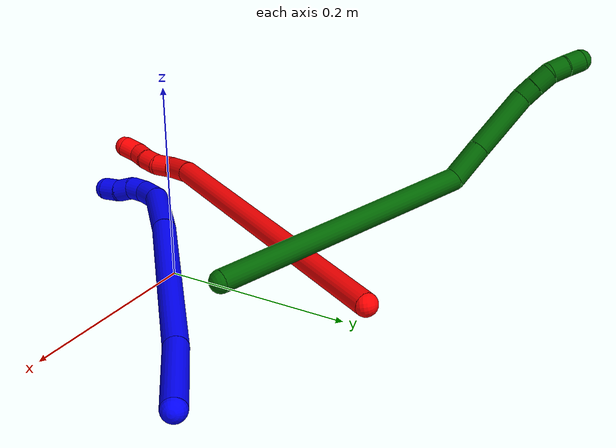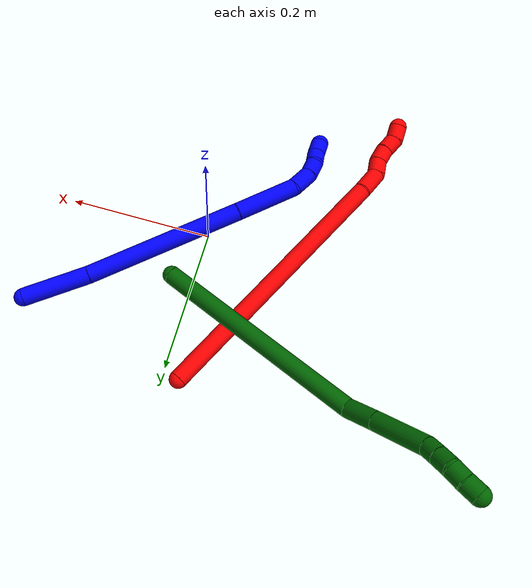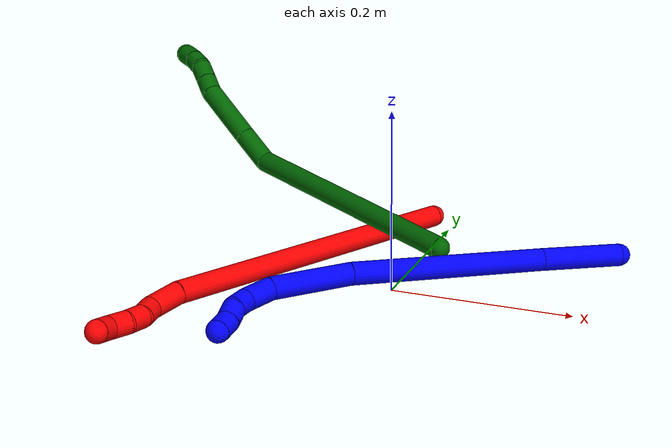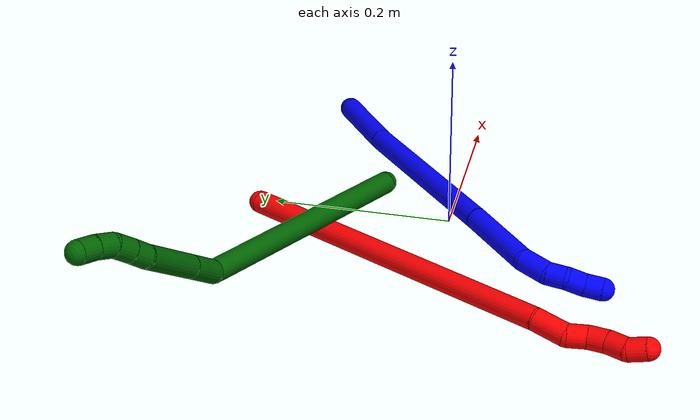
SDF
<sdf version="1.7">
 <world name="default">
  <model name="photoneo_s_sensor">
   <static>1</static>
   <pose>0 0 2 1.57079 1.57079 3.14159</pose>
   <link name="link">
    <inertial><mass>0.1</mass></inertial>
    <sensor name="sensor" type="depth">
     <update_rate>30</update_rate>
     <camera>
      <horizontal_fov>1.22</horizontal_fov>
      <image><width>1920</width><height>1200</height><format>B8G8R8</format></image>
      <clip><near>0.1</near><far>4</far></clip>
      <depth_camera><output>points</output></depth_camera>
     </camera>
     <plugin name="camera_plugin" filename="libgazebo_ros_depth_camera.so">
      <baseline>0.2</baseline>
      <alwaysOn>1</alwaysOn>
      <updateRate>0.0</updateRate>
      <cameraName>camera_ir</cameraName>
      <imageTopicName>/camera/color/image_raw</imageTopicName>
      <cameraInfoTopicName>/camera/color/camera_info</cameraInfoTopicName>
      <depthImageTopicName>/camera/depth/image_raw</depthImageTopicName>
      <depthImageCameraInfoTopicName>/camera/depth/camera_info</depthImageCameraInfoTopicName>
      <pointCloudTopicName>/camera/depth/points</pointCloudTopicName>
      <frameName>fr_optical</frameName>
      <pointCloudCutoff>0.1</pointCloudCutoff>
      <pointCloudCutoffMax>2.0</pointCloudCutoffMax>
      <distortionK1>0</distortionK1>
      <distortionK2>0</distortionK2>
      <distortionK3>0</distortionK3>
      <distortionT1>0</distortionT1>
      <distortionT2>0</distortionT2>
      <CxPrime>0</CxPrime>
      <Cx>0</Cx>
      <Cy>0</Cy>
      <focalLength>0</focalLength>
      <hackBaseline>0</hackBaseline>
     </plugin>
    </sensor>
   </link>
  </model>
  <model name="bin">
   <static>1</static>
   <link name="bottom">
    <collision name="collision-bottom">
     <pose>0 0 -0.01 0 -0 0</pose>
     <geometry><box><size>0.8 0.6 0.02</size></box></geometry>
     <surface>
      <friction><ode><mu>100</mu><mu2>100</mu2></ode></friction>
      <contact><collide_bitmask>65535</collide_bitmask></contact>
     </surface>
    </collision>
   </link>
   <link name="west_wall">
    <collision name="collision-west_wall">
     <pose>-0.41 0 0.1 0 -0 0</pose>
     <geometry><box><size>0.02 0.6 0.2</size></box></geometry>
     <surface>
      <friction><ode><mu>100</mu><mu2>100</mu2></ode></friction>
      <contact><collide_bitmask>65535</collide_bitmask></contact>
     </surface>
    </collision>
   </link>
   <link name="east_wall">
    <collision name="collision-east_wall">
     <pose>0.41 0 0.1 0 -0 0</pose>
     <geometry><box><size>0.02 0.6 0.2</size></box></geometry>
     <surface>
      <friction><ode><mu>100</mu><mu2>100</mu2></ode></friction>
      <contact><collide_bitmask>65535</collide_bitmask></contact>
     </surface>
    </collision>
   </link>
   <link name="south_wall">
    <collision name="collision-south_wall">
     <pose>0 -0.31 0.1 0 -0 0</pose>
     <geometry><box><size>0.8 0.02 0.2</size></box></geometry>
     <surface>
      <friction><ode><mu>100</mu><mu2>100</mu2></ode></friction>
      <contact><collide_bitmask>65535</collide_bitmask></contact>
     </surface>
    </collision>
   </link>
   <link name="north_wall">
    <collision name="collision-north_wall">
     <pose>0 0.31 0.1 0 -0 0</pose>
     <geometry><box><size>0.8 0.02 0.2</size></box></geometry>
     <surface>
      <friction><ode><mu>100</mu><mu2>100</mu2></ode></friction>
      <contact><collide_bitmask>65535</collide_bitmask></contact>
     </surface>
    </collision>
   </link>
  </model>
  <model name="1">
   <static>0</static>
   <link name="1">
    <collision name="collision-cylinder-e_1_1_4">
     <pose>-0.014622 0.002071 -0.04436 -3.09495 -0.31809 2.85275</pose>
     <geometry><cylinder><radius>0.0125</radius><length>0.093507</length></cylinder></geometry>
     <surface>
      <friction><ode><mu>1.16</mu><mu2>1.16</mu2><slip1>0</slip1><slip2>0</slip2></ode></friction>
      <contact><ode><kp>1e+06</kp><kd>1</kd><max_vel>0</max_vel><min_depth>0.001</min_depth></ode></contact>
     </surface>
    </collision>
    <visual name="visual-cylinder-e_1_1_4">
     <pose>-0.014622 0.002071 -0.04436 -3.09495 -0.31809 2.85275</pose>
     <geometry><cylinder><radius>0.0125</radius><length>0.093507</length></cylinder></geometry>
     <material><ambient>0 0 1 1</ambient></material>
    </visual>
    <collision name="collision-cylinder-e_2_4_5">
     <pose>-0.070255 0.004104 -0.192635 3.14123 -0.375887 -3.13969</pose>
     <geometry><cylinder><radius>0.0125</radius><length>0.22343</length></cylinder></geometry>
     <surface>
      <friction><ode><mu>1.16</mu><mu2>1.16</mu2><slip1>0</slip1><slip2>0</slip2></ode></friction>
      <contact><ode><kp>1e+06</kp><kd>1</kd><max_vel>0</max_vel><min_depth>0.001</min_depth></ode></contact>
     </surface>
    </collision>
    <visual name="visual-cylinder-e_2_4_5">
     <pose>-0.070255 0.004104 -0.192635 3.14123 -0.375887 -3.13969</pose>
     <geometry><cylinder><radius>0.0125</radius><length>0.22343</length></cylinder></geometry>
     <material><ambient>0 0 1 1</ambient></material>
    </visual>
    <collision name="collision-cylinder-e_3_5_6">
     <pose>-0.126074 -0.000202 -0.338576 3.04037 -0.337195 -2.56311</pose>
     <geometry><cylinder><radius>0.0125</radius><length>0.089525</length></cylinder></geometry>
     <surface>
      <friction><ode><mu>1.16</mu><mu2>1.16</mu2><slip1>0</slip1><slip2>0</slip2></ode></friction>
      <contact><ode><kp>1e+06</kp><kd>1</kd><max_vel>0</max_vel><min_depth>0.001</min_depth></ode></contact>
     </surface>
    </collision>
    <visual name="visual-cylinder-e_3_5_6">
     <pose>-0.126074 -0.000202 -0.338576 3.04037 -0.337195 -2.56311</pose>
     <geometry><cylinder><radius>0.0125</radius><length>0.089525</length></cylinder></geometry>
     <material><ambient>0 0 1 1</ambient></material>
    </visual>
    <collision name="collision-cylinder-e_4_6_7">
     <pose>-0.147819 -0.010876 -0.39366 2.6856 -0.444931 -1.5454</pose>
     <geometry><cylinder><radius>0.0125</radius><length>0.032228</length></cylinder></geometry>
     <surface>
      <friction><ode><mu>1.16</mu><mu2>1.16</mu2><slip1>0</slip1><slip2>0</slip2></ode></friction>
      <contact><ode><kp>1e+06</kp><kd>1</kd><max_vel>0</max_vel><min_depth>0.001</min_depth></ode></contact>
     </surface>
    </collision>
    <visual name="visual-cylinder-e_4_6_7">
     <pose>-0.147819 -0.010876 -0.39366 2.6856 -0.444931 -1.5454</pose>
     <geometry><cylinder><radius>0.0125</radius><length>0.032228</length></cylinder></geometry>
     <material><ambient>0 0 1 1</ambient></material>
    </visual>
    <collision name="collision-cylinder-e_5_7_8">
     <pose>-0.16109 -0.023187 -0.412748 2.36644 -0.643936 -1.3702</pose>
     <geometry><cylinder><radius>0.0125</radius><length>0.021106</length></cylinder></geometry>
     <surface>
      <friction><ode><mu>1.16</mu><mu2>1.16</mu2><slip1>0</slip1><slip2>0</slip2></ode></friction>
      <contact><ode><kp>1e+06</kp><kd>1</kd><max_vel>0</max_vel><min_depth>0.001</min_depth></ode></contact>
     </surface>
    </collision>
    <visual name="visual-cylinder-e_5_7_8">
     <pose>-0.16109 -0.023187 -0.412748 2.36644 -0.643936 -1.3702</pose>
     <geometry><cylinder><radius>0.0125</radius><length>0.021106</length></cylinder></geometry>
     <material><ambient>0 0 1 1</ambient></material>
    </visual>
    <collision name="collision-cylinder-e_6_8_9">
     <pose>-0.171307 -0.037391 -0.422821 2.02437 -0.398047 -0.624303</pose>
     <geometry><cylinder><radius>0.0125</radius><length>0.020028</length></cylinder></geometry>
     <surface>
      <friction><ode><mu>1.16</mu><mu2>1.16</mu2><slip1>0</slip1><slip2>0</slip2></ode></friction>
      <contact><ode><kp>1e+06</kp><kd>1</kd><max_vel>0</max_vel><min_depth>0.001</min_depth></ode></contact>
     </surface>
    </collision>
    <visual name="visual-cylinder-e_6_8_9">
     <pose>-0.171307 -0.037391 -0.422821 2.02437 -0.398047 -0.624303</pose>
     <geometry><cylinder><radius>0.0125</radius><length>0.020028</length></cylinder></geometry>
     <material><ambient>0 0 1 1</ambient></material>
    </visual>
    <collision name="collision-cylinder-e_7_9_2">
     <pose>-0.180935 -0.052384 -0.431757 2.20165 -0.606042 -1.10353</pose>
     <geometry><cylinder><radius>0.0125</radius><length>0.020176</length></cylinder></geometry>
     <surface>
      <friction><ode><mu>1.16</mu><mu2>1.16</mu2><slip1>0</slip1><slip2>0</slip2></ode></friction>
      <contact><ode><kp>1e+06</kp><kd>1</kd><max_vel>0</max_vel><min_depth>0.001</min_depth></ode></contact>
     </surface>
    </collision>
    <visual name="visual-cylinder-e_7_9_2">
     <pose>-0.180935 -0.052384 -0.431757 2.20165 -0.606042 -1.10353</pose>
     <geometry><cylinder><radius>0.0125</radius><length>0.020176</length></cylinder></geometry>
     <material><ambient>0 0 1 1</ambient></material>
    </visual>
    <collision name="collision-sphere-2">
     <pose>-0.186681 -0.05908 -0.436647 0 -0 0</pose>
     <geometry><sphere><radius>0.0125</radius></sphere></geometry>
     <surface>
      <friction><ode><mu>1.16</mu><mu2>1.16</mu2><slip1>0</slip1><slip2>0</slip2></ode></friction>
      <contact><ode><kp>1e+06</kp><kd>1</kd><max_vel>0</max_vel><min_depth>0.001</min_depth></ode></contact>
     </surface>
    </collision>
    <visual name="visual-sphere-2">
     <pose>-0.186681 -0.05908 -0.436647 0 -0 0</pose>
     <geometry><sphere><radius>0.0125</radius></sphere></geometry>
     <material><ambient>0 0 1 1</ambient></material>
    </visual>
    <collision name="collision-sphere-9">
     <pose>-0.175189 -0.045689 -0.426866 0 -0 0</pose>
     <geometry><sphere><radius>0.0125</radius></sphere></geometry>
     <surface>
      <friction><ode><mu>1.16</mu><mu2>1.16</mu2><slip1>0</slip1><slip2>0</slip2></ode></friction>
      <contact><ode><kp>1e+06</kp><kd>1</kd><max_vel>0</max_vel><min_depth>0.001</min_depth></ode></contact>
     </surface>
    </collision>
    <visual name="visual-sphere-9">
     <pose>-0.175189 -0.045689 -0.426866 0 -0 0</pose>
     <geometry><sphere><radius>0.0125</radius></sphere></geometry>
     <material><ambient>0 0 1 1</ambient></material>
    </visual>
    <collision name="collision-sphere-4">
     <pose>-0.029244 0.004141 -0.088719 0 -0 0</pose>
     <geometry><sphere><radius>0.0125</radius></sphere></geometry>
     <surface>
      <friction><ode><mu>1.16</mu><mu2>1.16</mu2><slip1>0</slip1><slip2>0</slip2></ode></friction>
      <contact><ode><kp>1e+06</kp><kd>1</kd><max_vel>0</max_vel><min_depth>0.001</min_depth></ode></contact>
     </surface>
    </collision>
    <visual name="visual-sphere-4">
     <pose>-0.029244 0.004141 -0.088719 0 -0 0</pose>
     <geometry><sphere><radius>0.0125</radius></sphere></geometry>
     <material><ambient>0 0 1 1</ambient></material>
    </visual>
    <collision name="collision-sphere-1">
     <geometry><sphere><radius>0.0125</radius></sphere></geometry>
     <surface>
      <friction><ode><mu>1.16</mu><mu2>1.16</mu2><slip1>0</slip1><slip2>0</slip2></ode></friction>
      <contact><ode><kp>1e+06</kp><kd>1</kd><max_vel>0</max_vel><min_depth>0.001</min_depth></ode></contact>
     </surface>
    </collision>
    <visual name="visual-sphere-1">
     <geometry><sphere><radius>0.0125</radius></sphere></geometry>
     <material><ambient>0 0 1 1</ambient></material>
    </visual>
    <collision name="collision-sphere-8">
     <pose>-0.167426 -0.029093 -0.418776 0 -0 0</pose>
     <geometry><sphere><radius>0.0125</radius></sphere></geometry>
     <surface>
      <friction><ode><mu>1.16</mu><mu2>1.16</mu2><slip1>0</slip1><slip2>0</slip2></ode></friction>
      <contact><ode><kp>1e+06</kp><kd>1</kd><max_vel>0</max_vel><min_depth>0.001</min_depth></ode></contact>
     </surface>
    </collision>
    <visual name="visual-sphere-8">
     <pose>-0.167426 -0.029093 -0.418776 0 -0 0</pose>
     <geometry><sphere><radius>0.0125</radius></sphere></geometry>
     <material><ambient>0 0 1 1</ambient></material>
    </visual>
    <collision name="collision-sphere-5">
     <pose>-0.111265 0.004066 -0.29655 0 -0 0</pose>
     <geometry><sphere><radius>0.0125</radius></sphere></geometry>
     <surface>
      <friction><ode><mu>1.16</mu><mu2>1.16</mu2><slip1>0</slip1><slip2>0</slip2></ode></friction>
      <contact><ode><kp>1e+06</kp><kd>1</kd><max_vel>0</max_vel><min_depth>0.001</min_depth></ode></contact>
     </surface>
    </collision>
    <visual name="visual-sphere-5">
     <pose>-0.111265 0.004066 -0.29655 0 -0 0</pose>
     <geometry><sphere><radius>0.0125</radius></sphere></geometry>
     <material><ambient>0 0 1 1</ambient></material>
    </visual>
    <collision name="collision-sphere-6">
     <pose>-0.140884 -0.004471 -0.380601 0 -0 0</pose>
     <geometry><sphere><radius>0.0125</radius></sphere></geometry>
     <surface>
      <friction><ode><mu>1.16</mu><mu2>1.16</mu2><slip1>0</slip1><slip2>0</slip2></ode></friction>
      <contact><ode><kp>1e+06</kp><kd>1</kd><max_vel>0</max_vel><min_depth>0.001</min_depth></ode></contact>
     </surface>
    </collision>
    <visual name="visual-sphere-6">
     <pose>-0.140884 -0.004471 -0.380601 0 -0 0</pose>
     <geometry><sphere><radius>0.0125</radius></sphere></geometry>
     <material><ambient>0 0 1 1</ambient></material>
    </visual>
    <collision name="collision-sphere-7">
     <pose>-0.154755 -0.017281 -0.406719 0 -0 0</pose>
     <geometry><sphere><radius>0.0125</radius></sphere></geometry>
     <surface>
      <friction><ode><mu>1.16</mu><mu2>1.16</mu2><slip1>0</slip1><slip2>0</slip2></ode></friction>
      <contact><ode><kp>1e+06</kp><kd>1</kd><max_vel>0</max_vel><min_depth>0.001</min_depth></ode></contact>
     </surface>
    </collision>
    <visual name="visual-sphere-7">
     <pose>-0.154755 -0.017281 -0.406719 0 -0 0</pose>
     <geometry><sphere><radius>0.0125</radius></sphere></geometry>
     <material><ambient>0 0 1 1</ambient></material>
    </visual>
    <inertial>
     <pose>-0.087193 -0.003106 -0.232154 0 -0 0</pose>
     <mass>0.5</mass>
     <inertia>
      <ixx>-0.001022</ixx>
      <ixy>0</ixy>
      <ixz>0</ixz>
      <iyy>0.001036</iyy>
      <iyz>0</iyz>
      <izz>0.000366</izz>
     </inertia>
    </inertial>
   </link>
   <pose>0.21392 0.162451 0.011497 1.22666 0.827073 1.76857</pose>
  </model>
  <model name="2">
   <static>0</static>
   <link name="2">
    <collision name="collision-cylinder-e_1_1_4">
     <pose>-0.056402 -0.132897 0.12073 0.83333 -0.304371 -0.13555</pose>
     <geometry><cylinder><radius>0.0125</radius><length>0.376396</length></cylinder></geometry>
     <surface>
      <friction><ode><mu>1.16</mu><mu2>1.16</mu2><slip1>0</slip1><slip2>0</slip2></ode></friction>
      <contact><ode><kp>1e+06</kp><kd>1</kd><max_vel>0</max_vel><min_depth>0.001</min_depth></ode></contact>
     </surface>
    </collision>
    <visual name="visual-cylinder-e_1_1_4">
     <pose>-0.056402 -0.132897 0.12073 0.83333 -0.304371 -0.13555</pose>
     <geometry><cylinder><radius>0.0125</radius><length>0.376396</length></cylinder></geometry>
     <material><ambient>1 0 0 1</ambient></material>
    </visual>
    <collision name="collision-cylinder-e_2_4_5">
     <pose>-0.115259 -0.278183 0.254721 0.751487 -0.134512 -0.053131</pose>
     <geometry><cylinder><radius>0.0125</radius><length>0.036627</length></cylinder></geometry>
     <surface>
      <friction><ode><mu>1.16</mu><mu2>1.16</mu2><slip1>0</slip1><slip2>0</slip2></ode></friction>
      <contact><ode><kp>1e+06</kp><kd>1</kd><max_vel>0</max_vel><min_depth>0.001</min_depth></ode></contact>
     </surface>
    </collision>
    <visual name="visual-cylinder-e_2_4_5">
     <pose>-0.115259 -0.278183 0.254721 0.751487 -0.134512 -0.053131</pose>
     <geometry><cylinder><radius>0.0125</radius><length>0.036627</length></cylinder></geometry>
     <material><ambient>1 0 0 1</ambient></material>
    </visual>
    <collision name="collision-cylinder-e_3_5_6">
     <pose>-0.120324 -0.293364 0.278457 0.260351 -0.236154 -0.031058</pose>
     <geometry><cylinder><radius>0.0125</radius><length>0.0223</length></cylinder></geometry>
     <surface>
      <friction><ode><mu>1.16</mu><mu2>1.16</mu2><slip1>0</slip1><slip2>0</slip2></ode></friction>
      <contact><ode><kp>1e+06</kp><kd>1</kd><max_vel>0</max_vel><min_depth>0.001</min_depth></ode></contact>
     </surface>
    </collision>
    <visual name="visual-cylinder-e_3_5_6">
     <pose>-0.120324 -0.293364 0.278457 0.260351 -0.236154 -0.031058</pose>
     <geometry><cylinder><radius>0.0125</radius><length>0.0223</length></cylinder></geometry>
     <material><ambient>1 0 0 1</ambient></material>
    </visual>
    <collision name="collision-cylinder-e_4_6_7">
     <pose>-0.126382 -0.301918 0.297202 0.60863 -0.329745 -0.104417</pose>
     <geometry><cylinder><radius>0.0125</radius><length>0.021308</length></cylinder></geometry>
     <surface>
      <friction><ode><mu>1.16</mu><mu2>1.16</mu2><slip1>0</slip1><slip2>0</slip2></ode></friction>
      <contact><ode><kp>1e+06</kp><kd>1</kd><max_vel>0</max_vel><min_depth>0.001</min_depth></ode></contact>
     </surface>
    </collision>
    <visual name="visual-cylinder-e_4_6_7">
     <pose>-0.126382 -0.301918 0.297202 0.60863 -0.329745 -0.104417</pose>
     <geometry><cylinder><radius>0.0125</radius><length>0.021308</length></cylinder></geometry>
     <material><ambient>1 0 0 1</ambient></material>
    </visual>
    <collision name="collision-cylinder-e_5_7_8">
     <pose>-0.133332 -0.315532 0.312689 0.827402 -0.317085 -0.140161</pose>
     <geometry><cylinder><radius>0.0125</radius><length>0.022447</length></cylinder></geometry>
     <surface>
      <friction><ode><mu>1.16</mu><mu2>1.16</mu2><slip1>0</slip1><slip2>0</slip2></ode></friction>
      <contact><ode><kp>1e+06</kp><kd>1</kd><max_vel>0</max_vel><min_depth>0.001</min_depth></ode></contact>
     </surface>
    </collision>
    <visual name="visual-cylinder-e_5_7_8">
     <pose>-0.133332 -0.315532 0.312689 0.827402 -0.317085 -0.140161</pose>
     <geometry><cylinder><radius>0.0125</radius><length>0.022447</length></cylinder></geometry>
     <material><ambient>1 0 0 1</ambient></material>
    </visual>
    <collision name="collision-cylinder-e_6_8_2">
     <pose>-0.141627 -0.326453 0.328682 0.336615 -0.476256 -0.082441</pose>
     <geometry><cylinder><radius>0.0125</radius><length>0.020922</length></cylinder></geometry>
     <surface>
      <friction><ode><mu>1.16</mu><mu2>1.16</mu2><slip1>0</slip1><slip2>0</slip2></ode></friction>
      <contact><ode><kp>1e+06</kp><kd>1</kd><max_vel>0</max_vel><min_depth>0.001</min_depth></ode></contact>
     </surface>
    </collision>
    <visual name="visual-cylinder-e_6_8_2">
     <pose>-0.141627 -0.326453 0.328682 0.336615 -0.476256 -0.082441</pose>
     <geometry><cylinder><radius>0.0125</radius><length>0.020922</length></cylinder></geometry>
     <material><ambient>1 0 0 1</ambient></material>
    </visual>
    <collision name="collision-sphere-2">
     <pose>-0.146423 -0.329524 0.337457 0 -0 0</pose>
     <geometry><sphere><radius>0.0125</radius></sphere></geometry>
     <surface>
      <friction><ode><mu>1.16</mu><mu2>1.16</mu2><slip1>0</slip1><slip2>0</slip2></ode></friction>
      <contact><ode><kp>1e+06</kp><kd>1</kd><max_vel>0</max_vel><min_depth>0.001</min_depth></ode></contact>
     </surface>
    </collision>
    <visual name="visual-sphere-2">
     <pose>-0.146423 -0.329524 0.337457 0 -0 0</pose>
     <geometry><sphere><radius>0.0125</radius></sphere></geometry>
     <material><ambient>1 0 0 1</ambient></material>
    </visual>
    <collision name="collision-sphere-4">
     <pose>-0.112803 -0.265793 0.241461 0 -0 0</pose>
     <geometry><sphere><radius>0.0125</radius></sphere></geometry>
     <surface>
      <friction><ode><mu>1.16</mu><mu2>1.16</mu2><slip1>0</slip1><slip2>0</slip2></ode></friction>
      <contact><ode><kp>1e+06</kp><kd>1</kd><max_vel>0</max_vel><min_depth>0.001</min_depth></ode></contact>
     </surface>
    </collision>
    <visual name="visual-sphere-4">
     <pose>-0.112803 -0.265793 0.241461 0 -0 0</pose>
     <geometry><sphere><radius>0.0125</radius></sphere></geometry>
     <material><ambient>1 0 0 1</ambient></material>
    </visual>
    <collision name="collision-sphere-1">
     <geometry><sphere><radius>0.0125</radius></sphere></geometry>
     <surface>
      <friction><ode><mu>1.16</mu><mu2>1.16</mu2><slip1>0</slip1><slip2>0</slip2></ode></friction>
      <contact><ode><kp>1e+06</kp><kd>1</kd><max_vel>0</max_vel><min_depth>0.001</min_depth></ode></contact>
     </surface>
    </collision>
    <visual name="visual-sphere-1">
     <geometry><sphere><radius>0.0125</radius></sphere></geometry>
     <material><ambient>1 0 0 1</ambient></material>
    </visual>
    <collision name="collision-sphere-8">
     <pose>-0.136831 -0.323382 0.319907 0 -0 0</pose>
     <geometry><sphere><radius>0.0125</radius></sphere></geometry>
     <surface>
      <friction><ode><mu>1.16</mu><mu2>1.16</mu2><slip1>0</slip1><slip2>0</slip2></ode></friction>
      <contact><ode><kp>1e+06</kp><kd>1</kd><max_vel>0</max_vel><min_depth>0.001</min_depth></ode></contact>
     </surface>
    </collision>
    <visual name="visual-sphere-8">
     <pose>-0.136831 -0.323382 0.319907 0 -0 0</pose>
     <geometry><sphere><radius>0.0125</radius></sphere></geometry>
     <material><ambient>1 0 0 1</ambient></material>
    </visual>
    <collision name="collision-sphere-5">
     <pose>-0.117715 -0.290573 0.267981 0 -0 0</pose>
     <geometry><sphere><radius>0.0125</radius></sphere></geometry>
     <surface>
      <friction><ode><mu>1.16</mu><mu2>1.16</mu2><slip1>0</slip1><slip2>0</slip2></ode></friction>
      <contact><ode><kp>1e+06</kp><kd>1</kd><max_vel>0</max_vel><min_depth>0.001</min_depth></ode></contact>
     </surface>
    </collision>
    <visual name="visual-sphere-5">
     <pose>-0.117715 -0.290573 0.267981 0 -0 0</pose>
     <geometry><sphere><radius>0.0125</radius></sphere></geometry>
     <material><ambient>1 0 0 1</ambient></material>
    </visual>
    <collision name="collision-sphere-6">
     <pose>-0.122933 -0.296155 0.288932 0 -0 0</pose>
     <geometry><sphere><radius>0.0125</radius></sphere></geometry>
     <surface>
      <friction><ode><mu>1.16</mu><mu2>1.16</mu2><slip1>0</slip1><slip2>0</slip2></ode></friction>
      <contact><ode><kp>1e+06</kp><kd>1</kd><max_vel>0</max_vel><min_depth>0.001</min_depth></ode></contact>
     </surface>
    </collision>
    <visual name="visual-sphere-6">
     <pose>-0.122933 -0.296155 0.288932 0 -0 0</pose>
     <geometry><sphere><radius>0.0125</radius></sphere></geometry>
     <material><ambient>1 0 0 1</ambient></material>
    </visual>
    <collision name="collision-sphere-7">
     <pose>-0.129832 -0.307681 0.305472 0 -0 0</pose>
     <geometry><sphere><radius>0.0125</radius></sphere></geometry>
     <surface>
      <friction><ode><mu>1.16</mu><mu2>1.16</mu2><slip1>0</slip1><slip2>0</slip2></ode></friction>
      <contact><ode><kp>1e+06</kp><kd>1</kd><max_vel>0</max_vel><min_depth>0.001</min_depth></ode></contact>
     </surface>
    </collision>
    <visual name="visual-sphere-7">
     <pose>-0.129832 -0.307681 0.305472 0 -0 0</pose>
     <geometry><sphere><radius>0.0125</radius></sphere></geometry>
     <material><ambient>1 0 0 1</ambient></material>
    </visual>
    <inertial>
     <pose>-0.073566 -0.174198 0.16242 0 -0 0</pose>
     <mass>0.5</mass>
     <inertia>
      <ixx>0.003639</ixx>
      <ixy>0</ixy>
      <ixz>0</ixz>
      <iyy>0.002513</iyy>
      <iyz>0</iyz>
      <izz>0.004521</izz>
     </inertia>
    </inertial>
   </link>
   <pose>-0.023136 0.212405 0.011497 2.30176 1.28202 1.09878</pose>
  </model>
  <model name="6">
   <static>0</static>
   <link name="6">
    <collision name="collision-cylinder-e_1_1_4">
     <pose>-0.007897 0.007284 0.147816 -0.049235 -0.053308 0.001313</pose>
     <geometry><cylinder><radius>0.0125</radius><length>0.296411</length></cylinder></geometry>
     <surface>
      <friction><ode><mu>1.16</mu><mu2>1.16</mu2><slip1>0</slip1><slip2>0</slip2></ode></friction>
      <contact><ode><kp>1e+06</kp><kd>1</kd><max_vel>0</max_vel><min_depth>0.001</min_depth></ode></contact>
     </surface>
    </collision>
    <visual name="visual-cylinder-e_1_1_4">
     <pose>-0.007897 0.007284 0.147816 -0.049235 -0.053308 0.001313</pose>
     <geometry><cylinder><radius>0.0125</radius><length>0.296411</length></cylinder></geometry>
     <material><ambient>0 0.392157 0.003922 1</ambient></material>
    </visual>
    <collision name="collision-cylinder-e_2_4_5">
     <pose>-0.026764 0.020234 0.314281 -0.295009 -0.512638 0.077844</pose>
     <geometry><cylinder><radius>0.0125</radius><length>0.044734</length></cylinder></geometry>
     <surface>
      <friction><ode><mu>1.16</mu><mu2>1.16</mu2><slip1>0</slip1><slip2>0</slip2></ode></friction>
      <contact><ode><kp>1e+06</kp><kd>1</kd><max_vel>0</max_vel><min_depth>0.001</min_depth></ode></contact>
     </surface>
    </collision>
    <visual name="visual-cylinder-e_2_4_5">
     <pose>-0.026764 0.020234 0.314281 -0.295009 -0.512638 0.077844</pose>
     <geometry><cylinder><radius>0.0125</radius><length>0.044734</length></cylinder></geometry>
     <material><ambient>0 0.392157 0.003922 1</ambient></material>
    </visual>
    <collision name="collision-cylinder-e_3_5_6">
     <pose>-0.056566 0.034932 0.364852 -0.275686 -0.516308 0.073226</pose>
     <geometry><cylinder><radius>0.0125</radius><length>0.076292</length></cylinder></geometry>
     <surface>
      <friction><ode><mu>1.16</mu><mu2>1.16</mu2><slip1>0</slip1><slip2>0</slip2></ode></friction>
      <contact><ode><kp>1e+06</kp><kd>1</kd><max_vel>0</max_vel><min_depth>0.001</min_depth></ode></contact>
     </surface>
    </collision>
    <visual name="visual-cylinder-e_3_5_6">
     <pose>-0.056566 0.034932 0.364852 -0.275686 -0.516308 0.073226</pose>
     <geometry><cylinder><radius>0.0125</radius><length>0.076292</length></cylinder></geometry>
     <material><ambient>0 0.392157 0.003922 1</ambient></material>
    </visual>
    <collision name="collision-cylinder-e_4_6_7">
     <pose>-0.081625 0.044068 0.404602 -0.013536 -0.671909 0.004727</pose>
     <geometry><cylinder><radius>0.0125</radius><length>0.020008</length></cylinder></geometry>
     <surface>
      <friction><ode><mu>1.16</mu><mu2>1.16</mu2><slip1>0</slip1><slip2>0</slip2></ode></friction>
      <contact><ode><kp>1e+06</kp><kd>1</kd><max_vel>0</max_vel><min_depth>0.001</min_depth></ode></contact>
     </surface>
    </collision>
    <visual name="visual-cylinder-e_4_6_7">
     <pose>-0.081625 0.044068 0.404602 -0.013536 -0.671909 0.004727</pose>
     <geometry><cylinder><radius>0.0125</radius><length>0.020008</length></cylinder></geometry>
     <material><ambient>0 0.392157 0.003922 1</ambient></material>
    </visual>
    <collision name="collision-cylinder-e_5_7_8">
     <pose>-0.094409 0.044075 0.421275 0.011204 -0.637882 -0.0037</pose>
     <geometry><cylinder><radius>0.0125</radius><length>0.02202</length></cylinder></geometry>
     <surface>
      <friction><ode><mu>1.16</mu><mu2>1.16</mu2><slip1>0</slip1><slip2>0</slip2></ode></friction>
      <contact><ode><kp>1e+06</kp><kd>1</kd><max_vel>0</max_vel><min_depth>0.001</min_depth></ode></contact>
     </surface>
    </collision>
    <visual name="visual-cylinder-e_5_7_8">
     <pose>-0.094409 0.044075 0.421275 0.011204 -0.637882 -0.0037</pose>
     <geometry><cylinder><radius>0.0125</radius><length>0.02202</length></cylinder></geometry>
     <material><ambient>0 0.392157 0.003922 1</ambient></material>
    </visual>
    <collision name="collision-cylinder-e_6_8_9">
     <pose>-0.10377 0.042974 0.439822 0.102837 -0.279969 -0.014503</pose>
     <geometry><cylinder><radius>0.0125</radius><length>0.020299</length></cylinder></geometry>
     <surface>
      <friction><ode><mu>1.16</mu><mu2>1.16</mu2><slip1>0</slip1><slip2>0</slip2></ode></friction>
      <contact><ode><kp>1e+06</kp><kd>1</kd><max_vel>0</max_vel><min_depth>0.001</min_depth></ode></contact>
     </surface>
    </collision>
    <visual name="visual-cylinder-e_6_8_9">
     <pose>-0.10377 0.042974 0.439822 0.102837 -0.279969 -0.014503</pose>
     <geometry><cylinder><radius>0.0125</radius><length>0.020299</length></cylinder></geometry>
     <material><ambient>0 0.392157 0.003922 1</ambient></material>
    </visual>
    <collision name="collision-cylinder-e_7_9_2">
     <pose>-0.108134 0.041442 0.459508 0.053101 -0.154767 -0.004118</pose>
     <geometry><cylinder><radius>0.0125</radius><length>0.020236</length></cylinder></geometry>
     <surface>
      <friction><ode><mu>1.16</mu><mu2>1.16</mu2><slip1>0</slip1><slip2>0</slip2></ode></friction>
      <contact><ode><kp>1e+06</kp><kd>1</kd><max_vel>0</max_vel><min_depth>0.001</min_depth></ode></contact>
     </surface>
    </collision>
    <visual name="visual-cylinder-e_7_9_2">
     <pose>-0.108134 0.041442 0.459508 0.053101 -0.154767 -0.004118</pose>
     <geometry><cylinder><radius>0.0125</radius><length>0.020236</length></cylinder></geometry>
     <material><ambient>0 0.392157 0.003922 1</ambient></material>
    </visual>
    <collision name="collision-sphere-2">
     <pose>-0.109694 0.040912 0.46949 0 -0 0</pose>
     <geometry><sphere><radius>0.0125</radius></sphere></geometry>
     <surface>
      <friction><ode><mu>1.16</mu><mu2>1.16</mu2><slip1>0</slip1><slip2>0</slip2></ode></friction>
      <contact><ode><kp>1e+06</kp><kd>1</kd><max_vel>0</max_vel><min_depth>0.001</min_depth></ode></contact>
     </surface>
    </collision>
    <visual name="visual-sphere-2">
     <pose>-0.109694 0.040912 0.46949 0 -0 0</pose>
     <geometry><sphere><radius>0.0125</radius></sphere></geometry>
     <material><ambient>0 0.392157 0.003922 1</ambient></material>
    </visual>
    <collision name="collision-sphere-9">
     <pose>-0.106574 0.041973 0.449525 0 -0 0</pose>
     <geometry><sphere><radius>0.0125</radius></sphere></geometry>
     <surface>
      <friction><ode><mu>1.16</mu><mu2>1.16</mu2><slip1>0</slip1><slip2>0</slip2></ode></friction>
      <contact><ode><kp>1e+06</kp><kd>1</kd><max_vel>0</max_vel><min_depth>0.001</min_depth></ode></contact>
     </surface>
    </collision>
    <visual name="visual-sphere-9">
     <pose>-0.106574 0.041973 0.449525 0 -0 0</pose>
     <geometry><sphere><radius>0.0125</radius></sphere></geometry>
     <material><ambient>0 0.392157 0.003922 1</ambient></material>
    </visual>
    <collision name="collision-sphere-4">
     <pose>-0.015794 0.014567 0.295631 0 -0 0</pose>
     <geometry><sphere><radius>0.0125</radius></sphere></geometry>
     <surface>
      <friction><ode><mu>1.16</mu><mu2>1.16</mu2><slip1>0</slip1><slip2>0</slip2></ode></friction>
      <contact><ode><kp>1e+06</kp><kd>1</kd><max_vel>0</max_vel><min_depth>0.001</min_depth></ode></contact>
     </surface>
    </collision>
    <visual name="visual-sphere-4">
     <pose>-0.015794 0.014567 0.295631 0 -0 0</pose>
     <geometry><sphere><radius>0.0125</radius></sphere></geometry>
     <material><ambient>0 0.392157 0.003922 1</ambient></material>
    </visual>
    <collision name="collision-sphere-1">
     <geometry><sphere><radius>0.0125</radius></sphere></geometry>
     <surface>
      <friction><ode><mu>1.16</mu><mu2>1.16</mu2><slip1>0</slip1><slip2>0</slip2></ode></friction>
      <contact><ode><kp>1e+06</kp><kd>1</kd><max_vel>0</max_vel><min_depth>0.001</min_depth></ode></contact>
     </surface>
    </collision>
    <visual name="visual-sphere-1">
     <geometry><sphere><radius>0.0125</radius></sphere></geometry>
     <material><ambient>0 0.392157 0.003922 1</ambient></material>
    </visual>
    <collision name="collision-sphere-8">
     <pose>-0.100965 0.043976 0.430119 0 -0 0</pose>
     <geometry><sphere><radius>0.0125</radius></sphere></geometry>
     <surface>
      <friction><ode><mu>1.16</mu><mu2>1.16</mu2><slip1>0</slip1><slip2>0</slip2></ode></friction>
      <contact><ode><kp>1e+06</kp><kd>1</kd><max_vel>0</max_vel><min_depth>0.001</min_depth></ode></contact>
     </surface>
    </collision>
    <visual name="visual-sphere-8">
     <pose>-0.100965 0.043976 0.430119 0 -0 0</pose>
     <geometry><sphere><radius>0.0125</radius></sphere></geometry>
     <material><ambient>0 0.392157 0.003922 1</ambient></material>
    </visual>
    <collision name="collision-sphere-5">
     <pose>-0.037734 0.025902 0.332931 0 -0 0</pose>
     <geometry><sphere><radius>0.0125</radius></sphere></geometry>
     <surface>
      <friction><ode><mu>1.16</mu><mu2>1.16</mu2><slip1>0</slip1><slip2>0</slip2></ode></friction>
      <contact><ode><kp>1e+06</kp><kd>1</kd><max_vel>0</max_vel><min_depth>0.001</min_depth></ode></contact>
     </surface>
    </collision>
    <visual name="visual-sphere-5">
     <pose>-0.037734 0.025902 0.332931 0 -0 0</pose>
     <geometry><sphere><radius>0.0125</radius></sphere></geometry>
     <material><ambient>0 0.392157 0.003922 1</ambient></material>
    </visual>
    <collision name="collision-sphere-6">
     <pose>-0.075398 0.043962 0.396773 0 -0 0</pose>
     <geometry><sphere><radius>0.0125</radius></sphere></geometry>
     <surface>
      <friction><ode><mu>1.16</mu><mu2>1.16</mu2><slip1>0</slip1><slip2>0</slip2></ode></friction>
      <contact><ode><kp>1e+06</kp><kd>1</kd><max_vel>0</max_vel><min_depth>0.001</min_depth></ode></contact>
     </surface>
    </collision>
    <visual name="visual-sphere-6">
     <pose>-0.075398 0.043962 0.396773 0 -0 0</pose>
     <geometry><sphere><radius>0.0125</radius></sphere></geometry>
     <material><ambient>0 0.392157 0.003922 1</ambient></material>
    </visual>
    <collision name="collision-sphere-7">
     <pose>-0.087853 0.044174 0.412431 0 -0 0</pose>
     <geometry><sphere><radius>0.0125</radius></sphere></geometry>
     <surface>
      <friction><ode><mu>1.16</mu><mu2>1.16</mu2><slip1>0</slip1><slip2>0</slip2></ode></friction>
      <contact><ode><kp>1e+06</kp><kd>1</kd><max_vel>0</max_vel><min_depth>0.001</min_depth></ode></contact>
     </surface>
    </collision>
    <visual name="visual-sphere-7">
     <pose>-0.087853 0.044174 0.412431 0 -0 0</pose>
     <geometry><sphere><radius>0.0125</radius></sphere></geometry>
     <material><ambient>0 0.392157 0.003922 1</ambient></material>
    </visual>
    <inertial>
     <pose>-0.03172 0.018585 0.242614 0 -0 0</pose>
     <mass>0.5</mass>
     <inertia>
      <ixx>0.002224</ixx>
      <ixy>0</ixy>
      <ixz>0</ixz>
      <iyy>0.002242</iyy>
      <iyz>0</iyz>
      <izz>6.1e-05</izz>
     </inertia>
    </inertial>
   </link>
   <pose>0.027508 0.079109 0.024383 1.41551 1.2108 -2.16836</pose>
  </model>
 </world>
</sdf>
